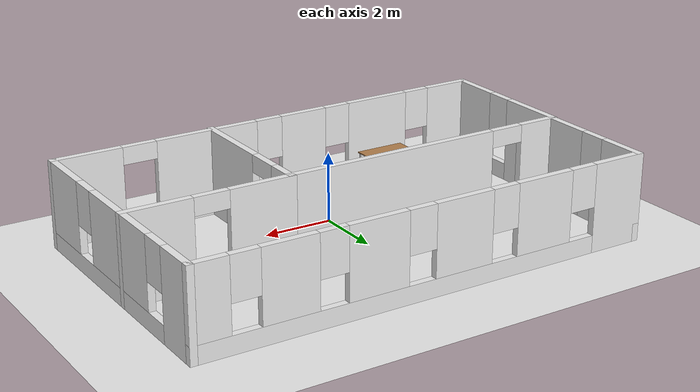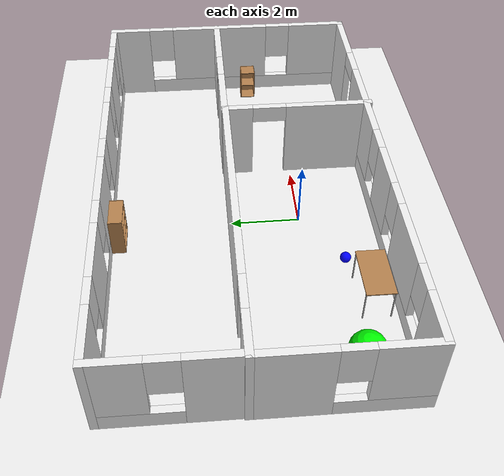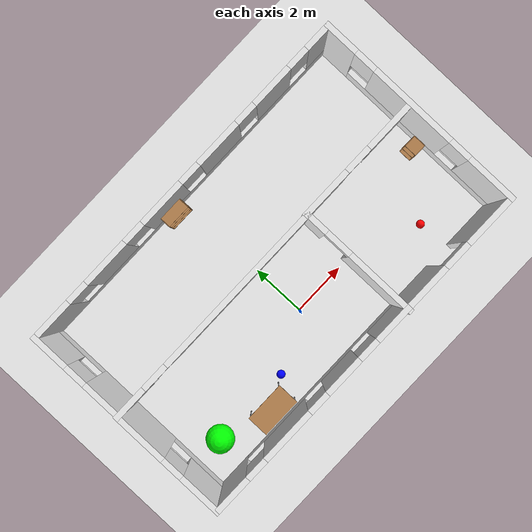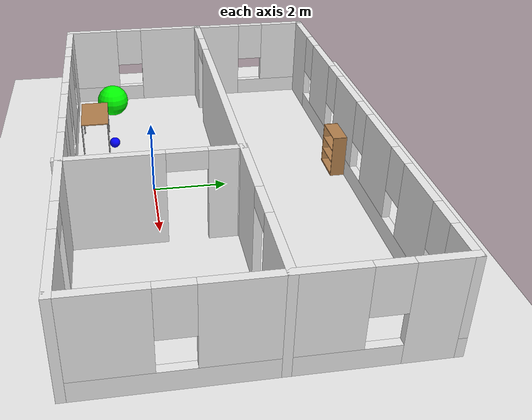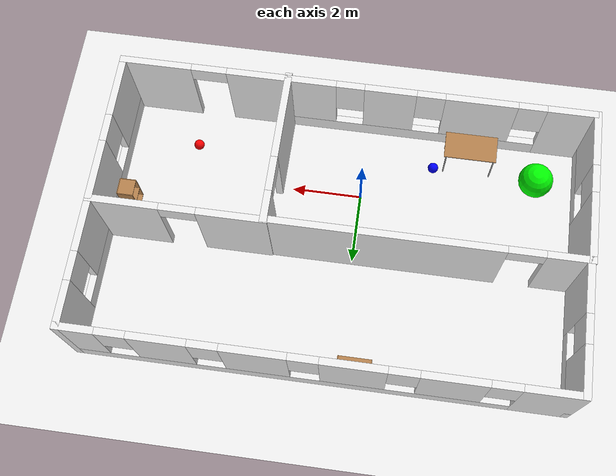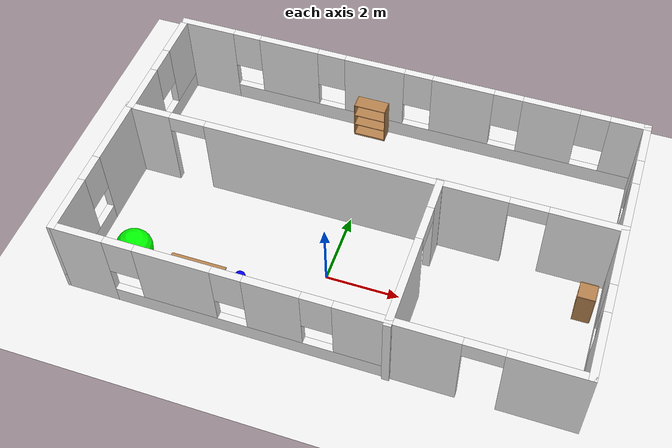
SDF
<sdf version="1.4">
 <world name="default">
  <light name="sun" type="directional">
   <pose>0 0 10 0 -0 0</pose>
   <diffuse>0.8 0.8 0.8 1</diffuse>
   <specular>0.2 0.2 0.2 1</specular>
   <attenuation>
    <range>1000</range>
    <constant>0.9</constant>
    <linear>0.01</linear>
    <quadratic>0.001</quadratic>
   </attenuation>
   <direction>0.5 0.1 -0.9</direction>
  </light>
  <scene><ambient>0.4 0.4 0.4 1</ambient><background>0.53 0.808 0.98 1</background><shadows>1</shadows></scene>
  <physics type="ode">
   <real_time_update_rate>1000.0</real_time_update_rate>
   <max_step_size>0.001</max_step_size>
   <real_time_factor>1</real_time_factor>
   <gravity>0 0 -9.8</gravity>
   <ode>
    <solver>
     <type>quick</type>
     <iters>150</iters>
     <precon_iters>0</precon_iters>
     <sor>1.400000</sor>
     <use_dynamic_moi_rescaling>1</use_dynamic_moi_rescaling>
    </solver>
    <constraints>
     <cfm>0.00001</cfm>
     <erp>0.2</erp>
     <contact_max_correcting_vel>2000.000000</contact_max_correcting_vel>
     <contact_surface_layer>0.01000</contact_surface_layer>
    </constraints>
   </ode>
  </physics>
  <model name="ground_plane_0">
   <static>1</static>
   <link name="link">
    <collision name="collision">
     <geometry><plane><normal>0 0 1</normal><size>100 100</size></plane></geometry>
     <surface><friction><ode><mu>100</mu><mu2>150</mu2></ode></friction></surface>
    </collision>
    <visual name="visual">
     <cast_shadows>0</cast_shadows>
     <geometry><plane><normal>0 0 1</normal><size>100 100</size></plane></geometry>
     <material>
      <script><uri>file://media/materials/scripts/gazebo.material</uri><name>Gazebo/White</name></script>
     </material>
    </visual>
    <velocity_decay><linear>0</linear><angular>0</angular></velocity_decay>
   </link>
   <pose>0.497681 0 0 0 -0 0</pose>
  </model>
  <model name="unit_sphere_1">
   <static>0</static>
   <pose>-2 -1 0.5 0 -0 0</pose>
   <link name="link">
    <inertial>
     <mass>1</mass>
     <inertia><ixx>1</ixx><ixy>0</ixy><ixz>0</ixz><iyy>1</iyy><iyz>0</iyz><izz>1</izz></inertia>
    </inertial>
    <collision name="collision"><geometry><sphere><radius>0.15</radius></sphere></geometry></collision>
    <visual name="visual">
     <material>
      <ambient>0 0 1 1</ambient>
      <diffuse>0 0 1 1</diffuse>
      <specular>0.1 0.1 0.1 1</specular>
      <emissive>0 0 0 0</emissive>
     </material>
     <geometry><sphere><radius>0.15</radius></sphere></geometry>
     <material>
      <script><uri>file://media/materials/scripts/gazebo.material</uri><name>Gazebo/White</name></script>
     </material>
    </visual>
    <velocity_decay><linear>0</linear><angular>0</angular></velocity_decay>
   </link>
  </model>
  <model name="unit_sphere_2">
   <static>0</static>
   <pose>5 -1 0.15 0 -0 0</pose>
   <link name="link">
    <inertial>
     <mass>1</mass>
     <inertia><ixx>1</ixx><ixy>0</ixy><ixz>0</ixz><iyy>1</iyy><iyz>0</iyz><izz>1</izz></inertia>
    </inertial>
    <collision name="collision"><geometry><sphere><radius>0.15</radius></sphere></geometry></collision>
    <visual name="visual">
     <material>
      <ambient>1 0 0 1</ambient>
      <diffuse>1 0 0 1</diffuse>
      <specular>0.1 0.1 0.1 1</specular>
      <emissive>0 0 0 0</emissive>
     </material>
     <geometry><sphere><radius>0.15</radius></sphere></geometry>
     <material>
      <script><uri>file://media/materials/scripts/gazebo.material</uri><name>Gazebo/White</name></script>
     </material>
    </visual>
    <velocity_decay><linear>0</linear><angular>0</angular></velocity_decay>
   </link>
  </model>
  <model name="unit_sphere_3">
   <static>0</static>
   <pose>-5 -1 0.5 0 -0 0</pose>
   <link name="link">
    <inertial>
     <mass>1</mass>
     <inertia><ixx>1</ixx><ixy>0</ixy><ixz>0</ixz><iyy>1</iyy><iyz>0</iyz><izz>1</izz></inertia>
    </inertial>
    <collision name="collision"><geometry><sphere><radius>0.5</radius></sphere></geometry></collision>
    <visual name="visual">
     <material>
      <ambient>0 1 0 1</ambient>
      <diffuse>0 1 0 1</diffuse>
      <specular>0.1 0.1 0.1 1</specular>
      <emissive>0 0 0 0</emissive>
     </material>
     <geometry><sphere><radius>0.5</radius></sphere></geometry>
     <material>
      <script><uri>file://media/materials/scripts/gazebo.material</uri><name>Gazebo/White</name></script>
     </material>
    </visual>
    <velocity_decay><linear>0</linear><angular>0</angular></velocity_decay>
   </link>
  </model>
  <model name="bookshelf">
   <static>0</static>
   <link name="link">
    <inertial><mass>1</mass></inertial>
    <collision name="back">
     <pose>0 0.005 0.6 0 -0 0</pose>
     <geometry><box><size>0.9 0.01 1.2</size></box></geometry>
    </collision>
    <visual name="visual1">
     <pose>0 0.005 0.6 0 -0 0</pose>
     <geometry><box><size>0.9 0.01 1.2</size></box></geometry>
     <material>
      <script><uri>file://media/materials/scripts/gazebo.material</uri><name>Gazebo/Wood</name></script>
     </material>
    </visual>
    <collision name="left_side">
     <pose>0.45 -0.195 0.6 0 -0 0</pose>
     <geometry><box><size>0.02 0.4 1.2</size></box></geometry>
    </collision>
    <visual name="visual2">
     <pose>0.45 -0.195 0.6 0 -0 0</pose>
     <geometry><box><size>0.02 0.4 1.2</size></box></geometry>
     <material>
      <script><uri>file://media/materials/scripts/gazebo.material</uri><name>Gazebo/Wood</name></script>
     </material>
    </visual>
    <collision name="right_side">
     <pose>-0.45 -0.195 0.6 0 -0 0</pose>
     <geometry><box><size>0.02 0.4 1.2</size></box></geometry>
    </collision>
    <visual name="visual3">
     <pose>-0.45 -0.195 0.6 0 -0 0</pose>
     <geometry><box><size>0.02 0.4 1.2</size></box></geometry>
     <material>
      <script><uri>file://media/materials/scripts/gazebo.material</uri><name>Gazebo/Wood</name></script>
     </material>
    </visual>
    <collision name="bottom">
     <pose>0 -0.195 0.03 0 -0 0</pose>
     <geometry><box><size>0.88 0.4 0.06</size></box></geometry>
    </collision>
    <visual name="visual4">
     <pose>0 -0.195 0.03 0 -0 0</pose>
     <geometry><box><size>0.88 0.4 0.06</size></box></geometry>
     <material>
      <script><uri>file://media/materials/scripts/gazebo.material</uri><name>Gazebo/Wood</name></script>
     </material>
    </visual>
    <collision name="top">
     <pose>0 -0.195 1.19 0 -0 0</pose>
     <geometry><box><size>0.88 0.4 0.02</size></box></geometry>
    </collision>
    <visual name="visual5">
     <pose>0 -0.195 1.19 0 -0 0</pose>
     <geometry><box><size>0.88 0.4 0.02</size></box></geometry>
     <material>
      <script><uri>file://media/materials/scripts/gazebo.material</uri><name>Gazebo/Wood</name></script>
     </material>
    </visual>
    <collision name="low_shelf">
     <pose>0 -0.195 0.43 0 -0 0</pose>
     <geometry><box><size>0.88 0.4 0.02</size></box></geometry>
    </collision>
    <visual name="visual6">
     <pose>0 -0.195 0.43 0 -0 0</pose>
     <geometry><box><size>0.88 0.4 0.02</size></box></geometry>
     <material>
      <script><uri>file://media/materials/scripts/gazebo.material</uri><name>Gazebo/Wood</name></script>
     </material>
    </visual>
    <collision name="high_shelf">
     <pose>0 -0.195 0.8 0 -0 0</pose>
     <geometry><box><size>0.88 0.4 0.02</size></box></geometry>
    </collision>
    <visual name="visual7">
     <pose>0 -0.195 0.8 0 -0 0</pose>
     <geometry><box><size>0.88 0.4 0.02</size></box></geometry>
     <material>
      <script><uri>file://media/materials/scripts/gazebo.material</uri><name>Gazebo/Wood</name></script>
     </material>
    </visual>
    <velocity_decay><linear>0</linear><angular>0</angular></velocity_decay>
   </link>
   <pose>-0.462025 5.45256 0 0 -0 0</pose>
  </model>
  <model name="table">
   <static>0</static>
   <link name="link">
    <collision name="surface">
     <pose>0 0 1 0 -0 0</pose>
     <geometry><box><size>1.5 0.8 0.03</size></box></geometry>
    </collision>
    <visual name="visual1">
     <pose>0 0 1 0 -0 0</pose>
     <geometry><box><size>1.5 0.8 0.03</size></box></geometry>
     <material>
      <script><uri>file://media/materials/scripts/gazebo.material</uri><name>Gazebo/Wood</name></script>
     </material>
    </visual>
    <collision name="front_left_leg">
     <pose>0.68 0.38 0.5 0 -0 0</pose>
     <geometry><cylinder><radius>0.02</radius><length>1</length></cylinder></geometry>
    </collision>
    <visual name="front_left_leg">
     <pose>0.68 0.38 0.5 0 -0 0</pose>
     <geometry><cylinder><radius>0.02</radius><length>1</length></cylinder></geometry>
     <material>
      <script><uri>file://media/materials/scripts/gazebo.material</uri><name>Gazebo/Grey</name></script>
     </material>
    </visual>
    <collision name="front_right_leg">
     <pose>0.68 -0.38 0.5 0 -0 0</pose>
     <geometry><cylinder><radius>0.02</radius><length>1</length></cylinder></geometry>
    </collision>
    <visual name="front_right_leg">
     <pose>0.68 -0.38 0.5 0 -0 0</pose>
     <geometry><cylinder><radius>0.02</radius><length>1</length></cylinder></geometry>
     <material>
      <script><uri>file://media/materials/scripts/gazebo.material</uri><name>Gazebo/Grey</name></script>
     </material>
    </visual>
    <collision name="back_right_leg">
     <pose>-0.68 -0.38 0.5 0 -0 0</pose>
     <geometry><cylinder><radius>0.02</radius><length>1</length></cylinder></geometry>
    </collision>
    <visual name="back_right_leg">
     <pose>-0.68 -0.38 0.5 0 -0 0</pose>
     <geometry><cylinder><radius>0.02</radius><length>1</length></cylinder></geometry>
     <material>
      <script><uri>file://media/materials/scripts/gazebo.material</uri><name>Gazebo/Grey</name></script>
     </material>
    </visual>
    <collision name="back_left_leg">
     <pose>-0.68 0.38 0.5 0 -0 0</pose>
     <geometry><cylinder><radius>0.02</radius><length>1</length></cylinder></geometry>
    </collision>
    <visual name="back_left_leg">
     <pose>-0.68 0.38 0.5 0 -0 0</pose>
     <geometry><cylinder><radius>0.02</radius><length>1</length></cylinder></geometry>
     <material>
      <script><uri>file://media/materials/scripts/gazebo.material</uri><name>Gazebo/Grey</name></script>
     </material>
    </visual>
    <velocity_decay><linear>0</linear><angular>0</angular></velocity_decay>
   </link>
   <pose>-3 -1.56047 0 0 -0 0</pose>
  </model>
  <model name="cabinet">
   <static>0</static>
   <link name="cabinet_bottom_plate">
    <inertial>
     <pose>0 0 -1 0 -0 0</pose>
     <inertia><ixx>2.05</ixx><ixy>0</ixy><ixz>0</ixz><iyy>2.05</iyy><iyz>0</iyz><izz>2.05</izz></inertia>
     <mass>25</mass>
    </inertial>
    <collision name="cabinet_bottom_plate_geom">
     <pose>0 0 0.01 0 -0 0</pose>
     <geometry><box><size>0.45 0.45 0.02</size></box></geometry>
    </collision>
    <visual name="cabinet_bottom_plate_geom_visual">
     <pose>0 0 0.01 0 -0 0</pose>
     <geometry><box><size>0.45 0.45 0.02</size></box></geometry>
     <material>
      <script><uri>file://media/materials/scripts/gazebo.material</uri><name>Gazebo/Wood</name></script>
     </material>
    </visual>
    <collision name="cabinet_bottom_plate_geom_cabinet_back_plate">
     <pose>0.235 0 0.51 0 -0 0</pose>
     <geometry><box><size>0.02 0.45 1.02</size></box></geometry>
    </collision>
    <visual name="cabinet_bottom_plate_geom_cabinet_back_plate_visual">
     <pose>0.235 0 0.51 0 -0 0</pose>
     <geometry><box><size>0.02 0.45 1.02</size></box></geometry>
     <material>
      <script><uri>file://media/materials/scripts/gazebo.material</uri><name>Gazebo/Wood</name></script>
     </material>
    </visual>
    <collision name="cabinet_bottom_plate_geom_cabinet_left_plate">
     <pose>0 0.235 0.51 0 -0 0</pose>
     <geometry><box><size>0.45 0.02 1.02</size></box></geometry>
    </collision>
    <visual name="cabinet_bottom_plate_geom_cabinet_left_plate_visual">
     <pose>0 0.235 0.51 0 -0 0</pose>
     <geometry><box><size>0.45 0.02 1.02</size></box></geometry>
     <material>
      <script><uri>file://media/materials/scripts/gazebo.material</uri><name>Gazebo/Wood</name></script>
     </material>
    </visual>
    <collision name="cabinet_bottom_plate_geom_cabinet_middle_plate">
     <pose>0 0 0.51 0 -0 0</pose>
     <geometry><box><size>0.45 0.45 0.02</size></box></geometry>
    </collision>
    <visual name="cabinet_bottom_plate_geom_cabinet_middle_plate_visual">
     <pose>0 0 0.51 0 -0 0</pose>
     <geometry><box><size>0.45 0.45 0.02</size></box></geometry>
     <material>
      <script><uri>file://media/materials/scripts/gazebo.material</uri><name>Gazebo/Wood</name></script>
     </material>
    </visual>
    <collision name="cabinet_bottom_plate_geom_cabinet_right_plate">
     <pose>0 -0.235 0.51 0 -0 0</pose>
     <geometry><box><size>0.45 0.02 1.02</size></box></geometry>
    </collision>
    <visual name="cabinet_bottom_plate_geom_cabinet_right_plate_visual">
     <pose>0 -0.235 0.51 0 -0 0</pose>
     <geometry><box><size>0.45 0.02 1.02</size></box></geometry>
     <material>
      <script><uri>file://media/materials/scripts/gazebo.material</uri><name>Gazebo/Wood</name></script>
     </material>
    </visual>
    <collision name="cabinet_bottom_plate_geom_cabinet_top_plate">
     <pose>0 0 1.01 0 -0 0</pose>
     <geometry><box><size>0.45 0.45 0.02</size></box></geometry>
    </collision>
    <visual name="cabinet_bottom_plate_geom_cabinet_top_plate_visual">
     <pose>0 0 1.01 0 -0 0</pose>
     <geometry><box><size>0.45 0.45 0.02</size></box></geometry>
     <material>
      <script><uri>file://media/materials/scripts/gazebo.material</uri><name>Gazebo/Wood</name></script>
     </material>
    </visual>
    <velocity_decay><linear>0</linear><angular>0</angular></velocity_decay>
   </link>
   <pose>6.59201 1 0 0 -0 0</pose>
  </model>
  <model name="threedoors">
   <static>1</static>
   <link name="Wall_1">
    <pose>-1.88691 -2.24867 0 0 -0 0</pose>
    <visual name="Wall_1_Visual_0">
     <pose>-3.67075 0 1.25 0 -0 0</pose>
     <geometry><box><size>1.39369 0.2 2.5</size></box></geometry>
     <material>
      <script><uri>file://media/materials/scripts/gazebo.material</uri><name>Gazebo/White</name></script>
     </material>
    </visual>
    <collision name="Wall_1_Collision_0">
     <geometry><box><size>1.39369 0.2 2.5</size></box></geometry>
     <pose>-3.67075 0 1.25 0 -0 0</pose>
    </collision>
    <visual name="Wall_1_Visual_1">
     <pose>0.696847 0 0.25 0 -0 0</pose>
     <geometry><box><size>7.3415 0.2 0.5</size></box></geometry>
     <material>
      <script><uri>file://media/materials/scripts/gazebo.material</uri><name>Gazebo/White</name></script>
     </material>
    </visual>
    <collision name="Wall_1_Collision_1">
     <geometry><box><size>7.3415 0.2 0.5</size></box></geometry>
     <pose>0.696847 0 0.25 0 -0 0</pose>
    </collision>
    <visual name="Wall_1_Visual_2">
     <pose>-1.16675 0 1.5 0 -0 0</pose>
     <geometry><box><size>2.0143 0.2 2</size></box></geometry>
     <material>
      <script><uri>file://media/materials/scripts/gazebo.material</uri><name>Gazebo/White</name></script>
     </material>
    </visual>
    <collision name="Wall_1_Collision_2">
     <geometry><box><size>2.0143 0.2 2</size></box></geometry>
     <pose>-1.16675 0 1.5 0 -0 0</pose>
    </collision>
    <visual name="Wall_1_Visual_3">
     <pose>1.37224 0 1.5 0 -0 0</pose>
     <geometry><box><size>1.46368 0.2 2</size></box></geometry>
     <material>
      <script><uri>file://media/materials/scripts/gazebo.material</uri><name>Gazebo/White</name></script>
     </material>
    </visual>
    <collision name="Wall_1_Collision_3">
     <geometry><box><size>1.46368 0.2 2</size></box></geometry>
     <pose>1.37224 0 1.5 0 -0 0</pose>
    </collision>
    <visual name="Wall_1_Visual_4">
     <pose>3.63584 0 1.5 0 -0 0</pose>
     <geometry><box><size>1.46352 0.2 2</size></box></geometry>
     <material>
      <script><uri>file://media/materials/scripts/gazebo.material</uri><name>Gazebo/White</name></script>
     </material>
    </visual>
    <collision name="Wall_1_Collision_4">
     <geometry><box><size>1.46352 0.2 2</size></box></geometry>
     <pose>3.63584 0 1.5 0 -0 0</pose>
    </collision>
    <visual name="Wall_1_Visual_5">
     <pose>-2.5739 0 1.9 0 -0 0</pose>
     <geometry><box><size>0.8 0.2 1.2</size></box></geometry>
     <material>
      <script><uri>file://media/materials/scripts/gazebo.material</uri><name>Gazebo/White</name></script>
     </material>
    </visual>
    <collision name="Wall_1_Collision_5">
     <geometry><box><size>0.8 0.2 1.2</size></box></geometry>
     <pose>-2.5739 0 1.9 0 -0 0</pose>
    </collision>
    <visual name="Wall_1_Visual_6">
     <pose>0.240401 0 1.9 0 -0 0</pose>
     <geometry><box><size>0.8 0.2 1.2</size></box></geometry>
     <material>
      <script><uri>file://media/materials/scripts/gazebo.material</uri><name>Gazebo/White</name></script>
     </material>
    </visual>
    <collision name="Wall_1_Collision_6">
     <geometry><box><size>0.8 0.2 1.2</size></box></geometry>
     <pose>0.240401 0 1.9 0 -0 0</pose>
    </collision>
    <visual name="Wall_1_Visual_7">
     <pose>2.50408 0 1.9 0 -0 0</pose>
     <geometry><box><size>0.8 0.2 1.2</size></box></geometry>
     <material>
      <script><uri>file://media/materials/scripts/gazebo.material</uri><name>Gazebo/White</name></script>
     </material>
    </visual>
    <collision name="Wall_1_Collision_7">
     <geometry><box><size>0.8 0.2 1.2</size></box></geometry>
     <pose>2.50408 0 1.9 0 -0 0</pose>
    </collision>
   </link>
   <link name="Wall_10">
    <pose>7.0717 1.65175 0 0 0 -1.5708</pose>
    <visual name="Wall_10_Visual_0">
     <pose>-3.34638 0 1.25 0 -0 0</pose>
     <geometry><box><size>1.30775 0.2 2.5</size></box></geometry>
     <material>
      <script><uri>file://media/materials/scripts/gazebo.material</uri><name>Gazebo/White</name></script>
     </material>
    </visual>
    <collision name="Wall_10_Collision_0">
     <geometry><box><size>1.30775 0.2 2.5</size></box></geometry>
     <pose>-3.34638 0 1.25 0 -0 0</pose>
    </collision>
    <visual name="Wall_10_Visual_1">
     <pose>0.653875 0 0.25 0 -0 0</pose>
     <geometry><box><size>6.69276 0.2 0.5</size></box></geometry>
     <material>
      <script><uri>file://media/materials/scripts/gazebo.material</uri><name>Gazebo/White</name></script>
     </material>
    </visual>
    <collision name="Wall_10_Collision_1">
     <geometry><box><size>6.69276 0.2 0.5</size></box></geometry>
     <pose>0.653875 0 0.25 0 -0 0</pose>
    </collision>
    <visual name="Wall_10_Visual_2">
     <pose>-0.287315 0 1.5 0 -0 0</pose>
     <geometry><box><size>3.21038 0.2 2</size></box></geometry>
     <material>
      <script><uri>file://media/materials/scripts/gazebo.material</uri><name>Gazebo/White</name></script>
     </material>
    </visual>
    <collision name="Wall_10_Collision_2">
     <geometry><box><size>3.21038 0.2 2</size></box></geometry>
     <pose>-0.287315 0 1.5 0 -0 0</pose>
    </collision>
    <visual name="Wall_10_Visual_3">
     <pose>3.05906 0 1.5 0 -0 0</pose>
     <geometry><box><size>1.88238 0.2 2</size></box></geometry>
     <material>
      <script><uri>file://media/materials/scripts/gazebo.material</uri><name>Gazebo/White</name></script>
     </material>
    </visual>
    <collision name="Wall_10_Collision_3">
     <geometry><box><size>1.88238 0.2 2</size></box></geometry>
     <pose>3.05906 0 1.5 0 -0 0</pose>
    </collision>
    <visual name="Wall_10_Visual_4">
     <pose>-2.2925 0 1.9 0 -0 0</pose>
     <geometry><box><size>0.8 0.2 1.2</size></box></geometry>
     <material>
      <script><uri>file://media/materials/scripts/gazebo.material</uri><name>Gazebo/White</name></script>
     </material>
    </visual>
    <collision name="Wall_10_Collision_4">
     <geometry><box><size>0.8 0.2 1.2</size></box></geometry>
     <pose>-2.2925 0 1.9 0 -0 0</pose>
    </collision>
    <visual name="Wall_10_Visual_5">
     <pose>1.71787 0 1.9 0 -0 0</pose>
     <geometry><box><size>0.8 0.2 1.2</size></box></geometry>
     <material>
      <script><uri>file://media/materials/scripts/gazebo.material</uri><name>Gazebo/White</name></script>
     </material>
    </visual>
    <collision name="Wall_10_Collision_5">
     <geometry><box><size>0.8 0.2 1.2</size></box></geometry>
     <pose>1.71787 0 1.9 0 -0 0</pose>
    </collision>
   </link>
   <link name="Wall_11">
    <pose>4.79273 -2.24851 0 0 -0 3.14159</pose>
    <visual name="Wall_11_Visual_0">
     <pose>-1.35536 0 1.25 0 -0 0</pose>
     <geometry><box><size>2.04722 0.2 2.5</size></box></geometry>
     <material>
      <script><uri>file://media/materials/scripts/gazebo.material</uri><name>Gazebo/White</name></script>
     </material>
    </visual>
    <collision name="Wall_11_Collision_0">
     <geometry><box><size>2.04722 0.2 2.5</size></box></geometry>
     <pose>-1.35536 0 1.25 0 -0 0</pose>
    </collision>
    <visual name="Wall_11_Visual_1">
     <pose>1.52361 0 1.25 0 -0 0</pose>
     <geometry><box><size>1.71072 0.2 2.5</size></box></geometry>
     <material>
      <script><uri>file://media/materials/scripts/gazebo.material</uri><name>Gazebo/White</name></script>
     </material>
    </visual>
    <collision name="Wall_11_Collision_1">
     <geometry><box><size>1.71072 0.2 2.5</size></box></geometry>
     <pose>1.52361 0 1.25 0 -0 0</pose>
    </collision>
    <visual name="Wall_11_Visual_2">
     <pose>0.168246 0 2.25 0 -0 0</pose>
     <geometry><box><size>1 0.2 0.5</size></box></geometry>
     <material>
      <script><uri>file://media/materials/scripts/gazebo.material</uri><name>Gazebo/White</name></script>
     </material>
    </visual>
    <collision name="Wall_11_Collision_2">
     <geometry><box><size>1 0.2 0.5</size></box></geometry>
     <pose>0.168246 0 2.25 0 -0 0</pose>
    </collision>
   </link>
   <link name="Wall_13">
    <pose>4.71626 2.03413 0 0 -0 0</pose>
    <visual name="Wall_13_Visual_0">
     <pose>-1.49302 0 1.25 0 -0 0</pose>
     <geometry><box><size>1.92486 0.2 2.5</size></box></geometry>
     <material>
      <script><uri>file://media/materials/scripts/gazebo.material</uri><name>Gazebo/White</name></script>
     </material>
    </visual>
    <collision name="Wall_13_Collision_0">
     <geometry><box><size>1.92486 0.2 2.5</size></box></geometry>
     <pose>-1.49302 0 1.25 0 -0 0</pose>
    </collision>
    <visual name="Wall_13_Visual_1">
     <pose>1.46243 0 1.25 0 -0 0</pose>
     <geometry><box><size>1.98604 0.2 2.5</size></box></geometry>
     <material>
      <script><uri>file://media/materials/scripts/gazebo.material</uri><name>Gazebo/White</name></script>
     </material>
    </visual>
    <collision name="Wall_13_Collision_1">
     <geometry><box><size>1.98604 0.2 2.5</size></box></geometry>
     <pose>1.46243 0 1.25 0 -0 0</pose>
    </collision>
    <visual name="Wall_13_Visual_2">
     <pose>-0.03059 0 2.25 0 -0 0</pose>
     <geometry><box><size>1 0.2 0.5</size></box></geometry>
     <material>
      <script><uri>file://media/materials/scripts/gazebo.material</uri><name>Gazebo/White</name></script>
     </material>
    </visual>
    <collision name="Wall_13_Collision_2">
     <geometry><box><size>1 0.2 0.5</size></box></geometry>
     <pose>-0.03059 0 2.25 0 -0 0</pose>
    </collision>
   </link>
   <link name="Wall_3">
    <pose>2.37826 -0.155399 0 0 -0 1.5708</pose>
    <visual name="Wall_3_Visual_0">
     <pose>-0.95997 0 1.25 0 -0 0</pose>
     <geometry><box><size>2.60705 0.2 2.5</size></box></geometry>
     <material>
      <script><uri>file://media/materials/scripts/gazebo.material</uri><name>Gazebo/White</name></script>
     </material>
    </visual>
    <collision name="Wall_3_Collision_0">
     <geometry><box><size>2.60705 0.2 2.5</size></box></geometry>
     <pose>-0.95997 0 1.25 0 -0 0</pose>
    </collision>
    <visual name="Wall_3_Visual_1">
     <pose>1.80353 0 1.25 0 -0 0</pose>
     <geometry><box><size>0.91994 0.2 2.5</size></box></geometry>
     <material>
      <script><uri>file://media/materials/scripts/gazebo.material</uri><name>Gazebo/White</name></script>
     </material>
    </visual>
    <collision name="Wall_3_Collision_1">
     <geometry><box><size>0.91994 0.2 2.5</size></box></geometry>
     <pose>1.80353 0 1.25 0 -0 0</pose>
    </collision>
    <visual name="Wall_3_Visual_2">
     <pose>0.843555 0 2.25 0 -0 0</pose>
     <geometry><box><size>1 0.2 0.5</size></box></geometry>
     <material>
      <script><uri>file://media/materials/scripts/gazebo.material</uri><name>Gazebo/White</name></script>
     </material>
    </visual>
    <collision name="Wall_3_Collision_2">
     <geometry><box><size>1 0.2 0.5</size></box></geometry>
     <pose>0.843555 0 2.25 0 -0 0</pose>
    </collision>
   </link>
   <link name="Wall_4">
    <pose>-1.93114 2.00809 0 0 -0 3.14159</pose>
    <visual name="Wall_4_Visual_0">
     <pose>-1.14398 0 1.25 0 -0 0</pose>
     <geometry><box><size>6.53085 0.2 2.5</size></box></geometry>
     <material>
      <script><uri>file://media/materials/scripts/gazebo.material</uri><name>Gazebo/White</name></script>
     </material>
    </visual>
    <collision name="Wall_4_Collision_0">
     <geometry><box><size>6.53085 0.2 2.5</size></box></geometry>
     <pose>-1.14398 0 1.25 0 -0 0</pose>
    </collision>
    <visual name="Wall_4_Visual_1">
     <pose>3.76542 0 1.25 0 -0 0</pose>
     <geometry><box><size>1.28795 0.2 2.5</size></box></geometry>
     <material>
      <script><uri>file://media/materials/scripts/gazebo.material</uri><name>Gazebo/White</name></script>
     </material>
    </visual>
    <collision name="Wall_4_Collision_1">
     <geometry><box><size>1.28795 0.2 2.5</size></box></geometry>
     <pose>3.76542 0 1.25 0 -0 0</pose>
    </collision>
    <visual name="Wall_4_Visual_2">
     <pose>2.62145 0 2.25 0 -0 0</pose>
     <geometry><box><size>1 0.2 0.5</size></box></geometry>
     <material>
      <script><uri>file://media/materials/scripts/gazebo.material</uri><name>Gazebo/White</name></script>
     </material>
    </visual>
    <collision name="Wall_4_Collision_2">
     <geometry><box><size>1 0.2 0.5</size></box></geometry>
     <pose>2.62145 0 2.25 0 -0 0</pose>
    </collision>
   </link>
   <link name="Wall_5">
    <pose>-6.24054 -0.120221 0 0 0 -1.5708</pose>
    <visual name="Wall_5_Visual_0">
     <pose>-1.21361 0 1.25 0 -0 0</pose>
     <geometry><box><size>2.02942 0.2 2.5</size></box></geometry>
     <material>
      <script><uri>file://media/materials/scripts/gazebo.material</uri><name>Gazebo/White</name></script>
     </material>
    </visual>
    <collision name="Wall_5_Collision_0">
     <geometry><box><size>2.02942 0.2 2.5</size></box></geometry>
     <pose>-1.21361 0 1.25 0 -0 0</pose>
    </collision>
    <visual name="Wall_5_Visual_1">
     <pose>1.01471 0 0.25 0 -0 0</pose>
     <geometry><box><size>2.42721 0.2 0.5</size></box></geometry>
     <material>
      <script><uri>file://media/materials/scripts/gazebo.material</uri><name>Gazebo/White</name></script>
     </material>
    </visual>
    <collision name="Wall_5_Collision_1">
     <geometry><box><size>2.42721 0.2 0.5</size></box></geometry>
     <pose>1.01471 0 0.25 0 -0 0</pose>
    </collision>
    <visual name="Wall_5_Visual_2">
     <pose>1.41471 0 1.5 0 -0 0</pose>
     <geometry><box><size>1.62721 0.2 2</size></box></geometry>
     <material>
      <script><uri>file://media/materials/scripts/gazebo.material</uri><name>Gazebo/White</name></script>
     </material>
    </visual>
    <collision name="Wall_5_Collision_2">
     <geometry><box><size>1.62721 0.2 2</size></box></geometry>
     <pose>1.41471 0 1.5 0 -0 0</pose>
    </collision>
    <visual name="Wall_5_Visual_3">
     <pose>0.201101 0 1.9 0 -0 0</pose>
     <geometry><box><size>0.8 0.2 1.2</size></box></geometry>
     <material>
      <script><uri>file://media/materials/scripts/gazebo.material</uri><name>Gazebo/White</name></script>
     </material>
    </visual>
    <collision name="Wall_5_Collision_3">
     <geometry><box><size>0.8 0.2 1.2</size></box></geometry>
     <pose>0.201101 0 1.9 0 -0 0</pose>
    </collision>
   </link>
   <link name="Wall_8">
    <pose>-6.20446 3.79306 0 0 -0 1.5708</pose>
    <visual name="Wall_8_Visual_0">
     <pose>-1.10653 0 1.25 0 -0 0</pose>
     <geometry><box><size>1.50483 0.2 2.5</size></box></geometry>
     <material>
      <script><uri>file://media/materials/scripts/gazebo.material</uri><name>Gazebo/White</name></script>
     </material>
    </visual>
    <collision name="Wall_8_Collision_0">
     <geometry><box><size>1.50483 0.2 2.5</size></box></geometry>
     <pose>-1.10653 0 1.25 0 -0 0</pose>
    </collision>
    <visual name="Wall_8_Visual_1">
     <pose>0.752413 0 0.25 0 -0 0</pose>
     <geometry><box><size>2.21306 0.2 0.5</size></box></geometry>
     <material>
      <script><uri>file://media/materials/scripts/gazebo.material</uri><name>Gazebo/White</name></script>
     </material>
    </visual>
    <collision name="Wall_8_Collision_1">
     <geometry><box><size>2.21306 0.2 0.5</size></box></geometry>
     <pose>0.752413 0 0.25 0 -0 0</pose>
    </collision>
    <visual name="Wall_8_Visual_2">
     <pose>1.15241 0 1.5 0 -0 0</pose>
     <geometry><box><size>1.41305 0.2 2</size></box></geometry>
     <material>
      <script><uri>file://media/materials/scripts/gazebo.material</uri><name>Gazebo/White</name></script>
     </material>
    </visual>
    <collision name="Wall_8_Collision_2">
     <geometry><box><size>1.41305 0.2 2</size></box></geometry>
     <pose>1.15241 0 1.5 0 -0 0</pose>
    </collision>
    <visual name="Wall_8_Visual_3">
     <pose>0.045885 0 1.9 0 -0 0</pose>
     <geometry><box><size>0.8 0.2 1.2</size></box></geometry>
     <material>
      <script><uri>file://media/materials/scripts/gazebo.material</uri><name>Gazebo/White</name></script>
     </material>
    </visual>
    <collision name="Wall_8_Collision_3">
     <geometry><box><size>0.8 0.2 1.2</size></box></geometry>
     <pose>0.045885 0 1.9 0 -0 0</pose>
    </collision>
   </link>
   <link name="Wall_9">
    <pose>0.433623 5.552 0 0 -0 0</pose>
    <visual name="Wall_9_Visual_0">
     <pose>-5.9245 0 1.25 0 -0 0</pose>
     <geometry><box><size>1.62721 0.2 2.5</size></box></geometry>
     <material>
      <script><uri>file://media/materials/scripts/gazebo.material</uri><name>Gazebo/White</name></script>
     </material>
    </visual>
    <collision name="Wall_9_Collision_0">
     <geometry><box><size>1.62721 0.2 2.5</size></box></geometry>
     <pose>-5.9245 0 1.25 0 -0 0</pose>
    </collision>
    <visual name="Wall_9_Visual_1">
     <pose>0.813602 0 0.25 0 -0 0</pose>
     <geometry><box><size>11.849 0.2 0.5</size></box></geometry>
     <material>
      <script><uri>file://media/materials/scripts/gazebo.material</uri><name>Gazebo/White</name></script>
     </material>
    </visual>
    <collision name="Wall_9_Collision_1">
     <geometry><box><size>11.849 0.2 0.5</size></box></geometry>
     <pose>0.813602 0 0.25 0 -0 0</pose>
    </collision>
    <visual name="Wall_9_Visual_2">
     <pose>-3.4389 0 1.5 0 -0 0</pose>
     <geometry><box><size>1.744 0.2 2</size></box></geometry>
     <material>
      <script><uri>file://media/materials/scripts/gazebo.material</uri><name>Gazebo/White</name></script>
     </material>
    </visual>
    <collision name="Wall_9_Collision_2">
     <geometry><box><size>1.744 0.2 2</size></box></geometry>
     <pose>-3.4389 0 1.5 0 -0 0</pose>
    </collision>
    <visual name="Wall_9_Visual_3">
     <pose>-0.900462 0 1.5 0 -0 0</pose>
     <geometry><box><size>1.73287 0.2 2</size></box></geometry>
     <material>
      <script><uri>file://media/materials/scripts/gazebo.material</uri><name>Gazebo/White</name></script>
     </material>
    </visual>
    <collision name="Wall_9_Collision_3">
     <geometry><box><size>1.73287 0.2 2</size></box></geometry>
     <pose>-0.900462 0 1.5 0 -0 0</pose>
    </collision>
    <visual name="Wall_9_Visual_4">
     <pose>1.63241 0 1.5 0 -0 0</pose>
     <geometry><box><size>1.73287 0.2 2</size></box></geometry>
     <material>
      <script><uri>file://media/materials/scripts/gazebo.material</uri><name>Gazebo/White</name></script>
     </material>
    </visual>
    <collision name="Wall_9_Collision_4">
     <geometry><box><size>1.73287 0.2 2</size></box></geometry>
     <pose>1.63241 0 1.5 0 -0 0</pose>
    </collision>
    <visual name="Wall_9_Visual_5">
     <pose>4.07733 0 1.5 0 -0 0</pose>
     <geometry><box><size>1.55698 0.2 2</size></box></geometry>
     <material>
      <script><uri>file://media/materials/scripts/gazebo.material</uri><name>Gazebo/White</name></script>
     </material>
    </visual>
    <collision name="Wall_9_Collision_5">
     <geometry><box><size>1.55698 0.2 2</size></box></geometry>
     <pose>4.07733 0 1.5 0 -0 0</pose>
    </collision>
    <visual name="Wall_9_Visual_6">
     <pose>6.19696 0 1.5 0 -0 0</pose>
     <geometry><box><size>1.08228 0.2 2</size></box></geometry>
     <material>
      <script><uri>file://media/materials/scripts/gazebo.material</uri><name>Gazebo/White</name></script>
     </material>
    </visual>
    <collision name="Wall_9_Collision_6">
     <geometry><box><size>1.08228 0.2 2</size></box></geometry>
     <pose>6.19696 0 1.5 0 -0 0</pose>
    </collision>
    <visual name="Wall_9_Visual_7">
     <pose>-4.71089 0 1.9 0 -0 0</pose>
     <geometry><box><size>0.8 0.2 1.2</size></box></geometry>
     <material>
      <script><uri>file://media/materials/scripts/gazebo.material</uri><name>Gazebo/White</name></script>
     </material>
    </visual>
    <collision name="Wall_9_Collision_7">
     <geometry><box><size>0.8 0.2 1.2</size></box></geometry>
     <pose>-4.71089 0 1.9 0 -0 0</pose>
    </collision>
    <visual name="Wall_9_Visual_8">
     <pose>-2.1669 0 1.9 0 -0 0</pose>
     <geometry><box><size>0.8 0.2 1.2</size></box></geometry>
     <material>
      <script><uri>file://media/materials/scripts/gazebo.material</uri><name>Gazebo/White</name></script>
     </material>
    </visual>
    <collision name="Wall_9_Collision_8">
     <geometry><box><size>0.8 0.2 1.2</size></box></geometry>
     <pose>-2.1669 0 1.9 0 -0 0</pose>
    </collision>
    <visual name="Wall_9_Visual_9">
     <pose>0.365974 0 1.9 0 -0 0</pose>
     <geometry><box><size>0.8 0.2 1.2</size></box></geometry>
     <material>
      <script><uri>file://media/materials/scripts/gazebo.material</uri><name>Gazebo/White</name></script>
     </material>
    </visual>
    <collision name="Wall_9_Collision_9">
     <geometry><box><size>0.8 0.2 1.2</size></box></geometry>
     <pose>0.365974 0 1.9 0 -0 0</pose>
    </collision>
    <visual name="Wall_9_Visual_10">
     <pose>2.89884 0 1.9 0 -0 0</pose>
     <geometry><box><size>0.8 0.2 1.2</size></box></geometry>
     <material>
      <script><uri>file://media/materials/scripts/gazebo.material</uri><name>Gazebo/White</name></script>
     </material>
    </visual>
    <collision name="Wall_9_Collision_10">
     <geometry><box><size>0.8 0.2 1.2</size></box></geometry>
     <pose>2.89884 0 1.9 0 -0 0</pose>
    </collision>
    <visual name="Wall_9_Visual_11">
     <pose>5.25582 0 1.9 0 -0 0</pose>
     <geometry><box><size>0.8 0.2 1.2</size></box></geometry>
     <material>
      <script><uri>file://media/materials/scripts/gazebo.material</uri><name>Gazebo/White</name></script>
     </material>
    </visual>
    <collision name="Wall_9_Collision_11">
     <geometry><box><size>0.8 0.2 1.2</size></box></geometry>
     <pose>5.25582 0 1.9 0 -0 0</pose>
    </collision>
   </link>
  </model>
 </world>
</sdf>
